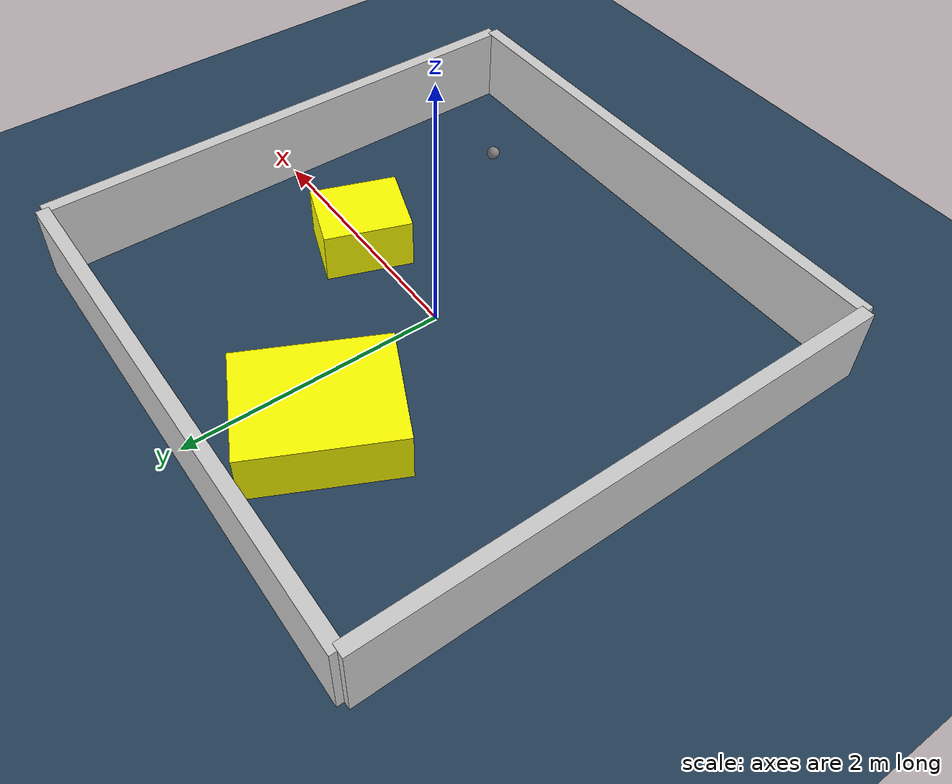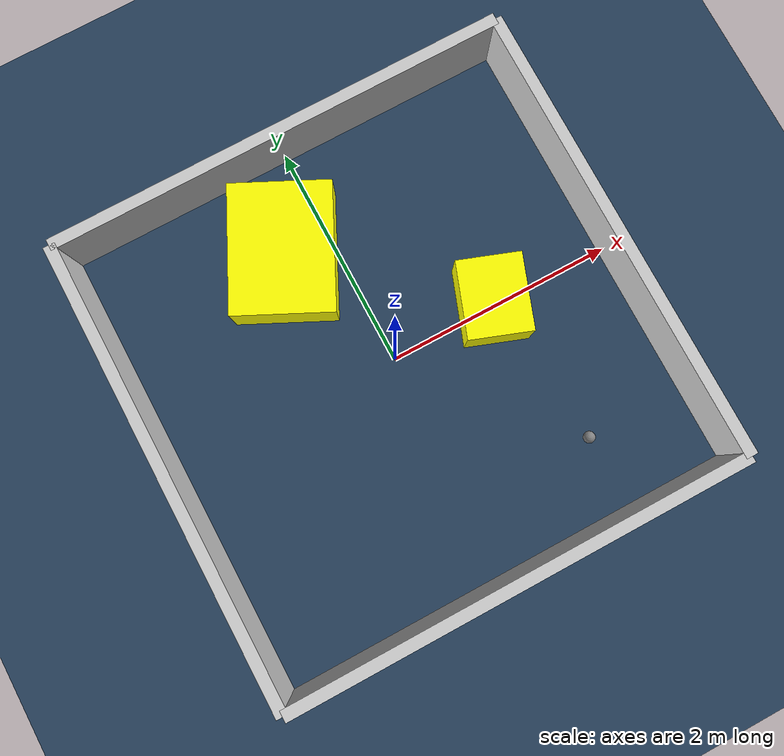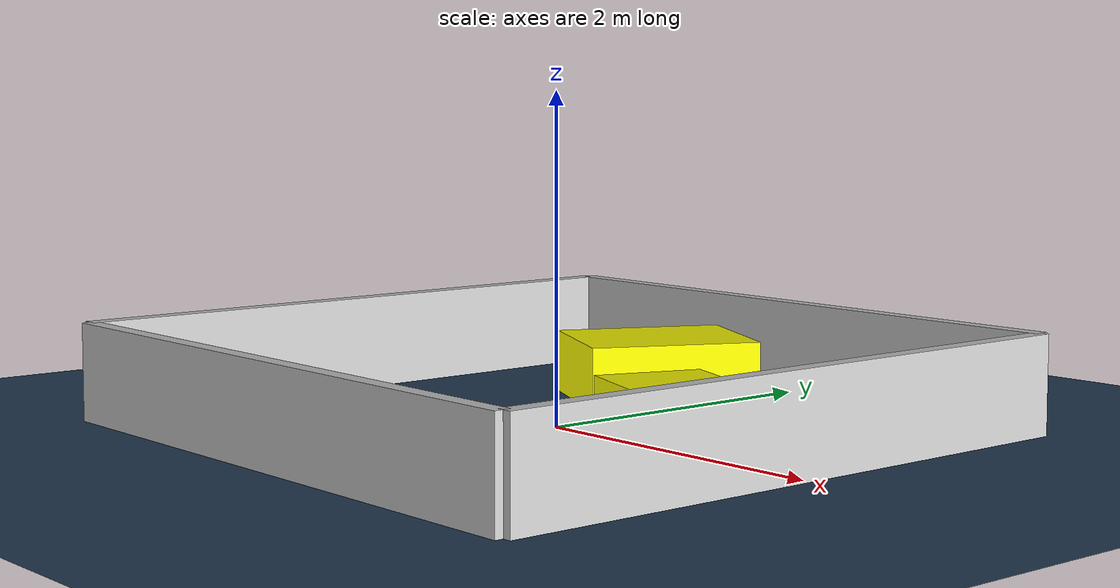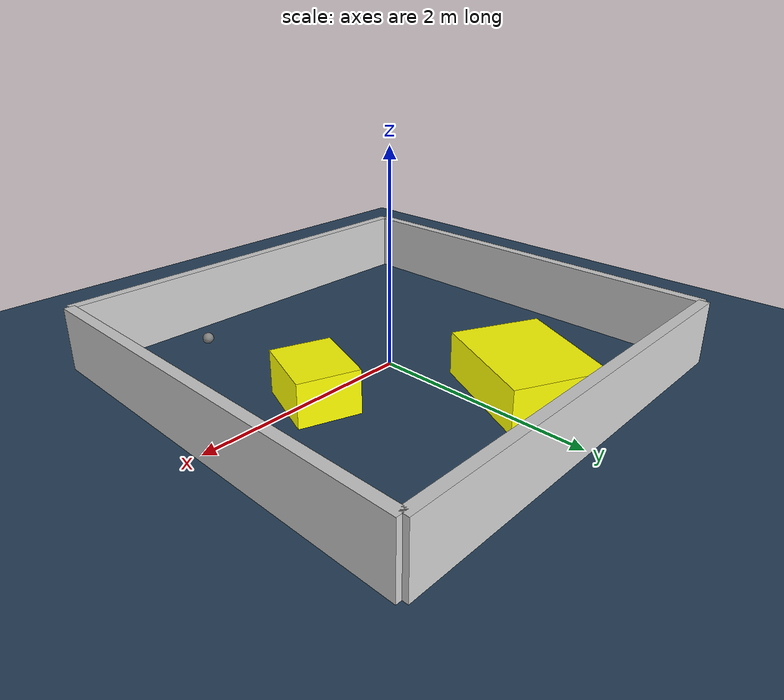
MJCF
<?xml version="1.0" ?>
<mujoco model="generated_environment">
  <option timestep="0.01" integrator="RK4" cone="elliptic"/>
  <default>
    <geom density="1"/>
  </default>
  <asset>
    <texture builtin="gradient" height="3072" rgb1="0.3 0.5 0.7" rgb2="0 0 0" type="skybox" width="512"/>
    <texture builtin="checker" height="300" mark="edge" markrgb="0.8 0.8 0.8" name="groundplane" rgb1="0.2 0.3 0.4" rgb2="0.1 0.2 0.3" type="2d" width="300"/>
    <material name="groundplane" reflectance="0.2" texrepeat="5 5" texture="groundplane" texuniform="true"/>
    <material name="robot" rgba="0.0 1.0 0.0 1"/>
  </asset>
  <worldbody>
    <light dir="0 0 -1" directional="true" pos="0 0 1.5"/>
    <geom condim="4" friction="1.0 0.005 0.001" material="groundplane" name="floor" size="0 0 0.05" type="plane"/>
    <body name="walls">
      <geom name="wall_1" condim="4" pos="-2.0 0.0 0.3" rgba="0.800000011920929 0.800000011920929 0.800000011920929 1.0" size="0.05 2.0 0.3" type="box"/>
      <geom name="wall_2" condim="4" pos="2.0 0.0 0.3" rgba="0.800000011920929 0.800000011920929 0.800000011920929 1.0" size="0.05 2.0 0.3" type="box"/>
      <geom name="wall_3" condim="4" pos="0.0 -2.0 0.3" rgba="0.800000011920929 0.800000011920929 0.800000011920929 1.0" size="2.0 0.05 0.3" type="box"/>
      <geom name="wall_4" condim="4" pos="0.0 2.0 0.3" rgba="0.800000011920929 0.800000011920929 0.800000011920929 1.0" size="2.0 0.05 0.3" type="box"/>
    </body>
    <body name="robot">
      <joint name="joint_x" type="slide" pos="0 0 0" axis="1 0 0"/>
      <joint name="joint_y" type="slide" pos="0 0 0" axis="0 1 0"/>
      <geom name="robot" type="sphere" pos="1.0653096225226109 -1.3155200552045172 0.2" size="0.05" mass="5." friction="1.0 0.005 0.0001" condim="4"/>
      <site name="sensor_ball"/>
    </body>
    <body name="obstacle_1_movable">
      <geom name="obstacle_1_movable" condim="4" pos="0.9232446581921083 0.030040105590047883 0.2" euler="0 0 160.22752531150485" friction="1.0 0.005 0.001" rgba="1 1 0 1" size="0.2734552118635886 0.3283956511655258 0.2" type="box" mass="0.1"/>
      <joint type="free"/>
    </body>
    <body name="obstacle_2_movable">
      <geom name="obstacle_2_movable" condim="4" pos="-0.40260270853587055 1.1902168708923386 0.2" euler="0 0 334.19061656731736" friction="1.0 0.005 0.001" rgba="1 1 0 1" size="0.43080974146096207 0.5487346573595274 0.2" type="box" mass="0.1"/>
      <joint type="free"/>
    </body>
  </worldbody>
  <actuator>
    <motor name="actuator_x" joint="joint_x" gear="1" ctrlrange="-1 1"/>
    <motor name="actuator_y" joint="joint_y" gear="1" ctrlrange="-1 1"/>
  </actuator>
</mujoco>
